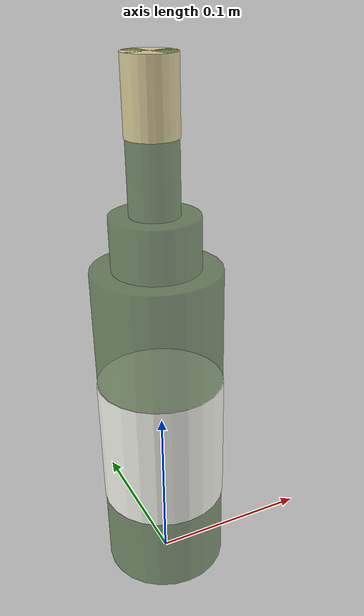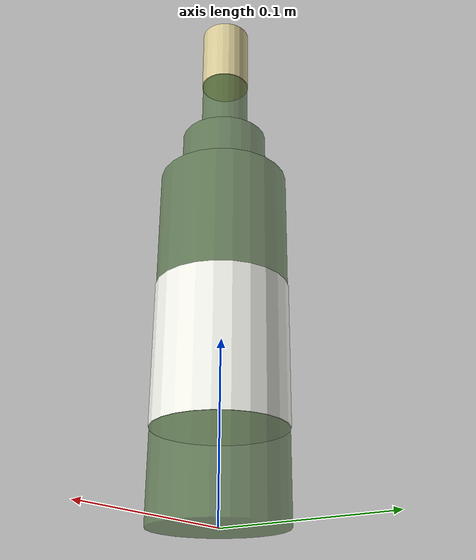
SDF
<?xml version="1.0" ?>
<!-- GENERATED by ros2_ws/src/bartender_gazebo/scripts/make_real_bar_bottles.py.
     Edit that script and re-run it; edits here are overwritten. -->
<sdf version="1.9">
  <model name="frontera_bottle">
    <link name="link">
      <inertial><pose>0 0 0.155 0 0 0</pose><mass>1.2</mass><inertia><ixx>0.010032</ixx><iyy>0.010032</iyy><izz>0.000844</izz><ixy>0</ixy><ixz>0</ixz><iyz>0</iyz></inertia></inertial>
      <velocity_decay><linear>0.05</linear><angular>0.30</angular></velocity_decay>
      <visual name="v0"><pose>0 0.0 0.1 0 0 0</pose><geometry><cylinder><radius>0.037</radius><length>0.2</length></cylinder></geometry><material><ambient>0.075 0.12 0.054 1</ambient><diffuse>0.25 0.4 0.18 0.6</diffuse><specular>0.6 0.6 0.6 1</specular></material><transparency>0.4</transparency></visual>
      <collision name="c0"><pose>0 0 0.1 0 0 0</pose><geometry><cylinder><radius>0.037</radius><length>0.2</length></cylinder></geometry><surface><friction><ode><mu>0.9</mu><mu2>0.9</mu2></ode></friction></surface></collision>
      <visual name="v1"><pose>0 0.0 0.09 0 0 0</pose><geometry><cylinder><radius>0.0375</radius><length>0.08</length></cylinder></geometry><material><ambient>0.285 0.285 0.276 1</ambient><diffuse>0.95 0.95 0.92 1</diffuse><specular>0.6 0.6 0.6 1</specular></material></visual>
      <visual name="v2"><pose>0 0.0 0.215 0 0 0</pose><geometry><cylinder><radius>0.025</radius><length>0.03</length></cylinder></geometry><material><ambient>0.075 0.12 0.054 1</ambient><diffuse>0.25 0.4 0.18 0.6</diffuse><specular>0.6 0.6 0.6 1</specular></material><transparency>0.4</transparency></visual>
      <collision name="c2"><pose>0 0 0.215 0 0 0</pose><geometry><cylinder><radius>0.025</radius><length>0.03</length></cylinder></geometry><surface><friction><ode><mu>0.9</mu><mu2>0.9</mu2></ode></friction></surface></collision>
      <visual name="v3"><pose>0 0.0 0.27 0 0 0</pose><geometry><cylinder><radius>0.014</radius><length>0.08</length></cylinder></geometry><material><ambient>0.075 0.12 0.054 1</ambient><diffuse>0.25 0.4 0.18 0.6</diffuse><specular>0.6 0.6 0.6 1</specular></material><transparency>0.4</transparency></visual>
      <collision name="c3"><pose>0 0 0.27 0 0 0</pose><geometry><cylinder><radius>0.014</radius><length>0.08</length></cylinder></geometry><surface><friction><ode><mu>0.9</mu><mu2>0.9</mu2></ode></friction></surface></collision>
      <visual name="v4"><pose>0 0.0 0.29 0 0 0</pose><geometry><cylinder><radius>0.0145</radius><length>0.04</length></cylinder></geometry><material><ambient>0.255 0.24 0.18 1</ambient><diffuse>0.85 0.8 0.6 1</diffuse><specular>0.6 0.6 0.6 1</specular></material></visual>
    </link>
  </model>
</sdf>
